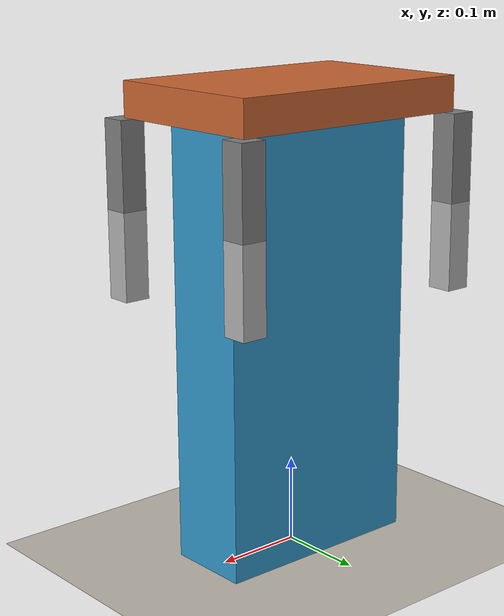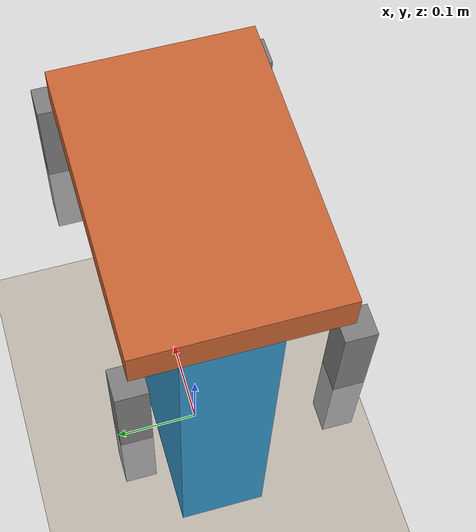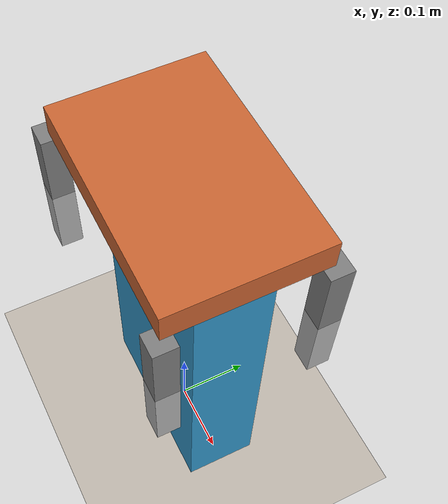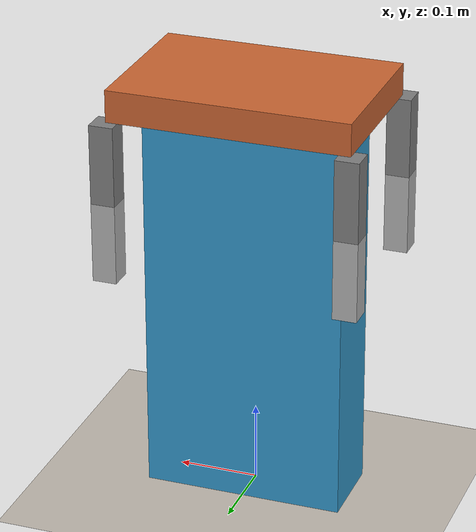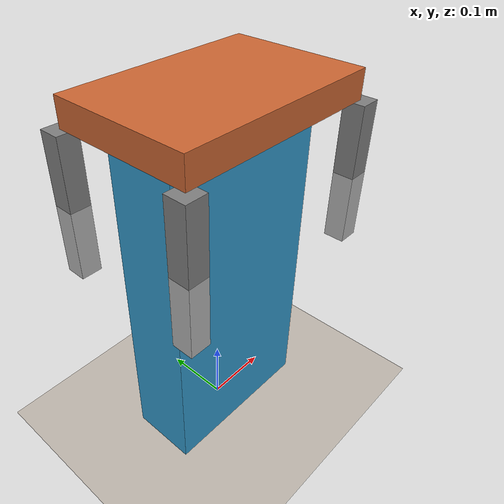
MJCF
<mujoco>
    <compiler angle="radian" meshdir="meshes" autolimits="true" />
    <option timestep="0.002" gravity="0 0 -9.81" integrator="implicitfast" density="1.225" viscosity="1.8e-5" />
    <asset>
        <!-- 天空盒纹理 -->
        <texture type="skybox" file="sea.png" gridsize="3 4" gridlayout=".U..LFRB.D.." />

        <!-- 地面纹理和材质 -->
        <texture name="floor_tex" type="2d" file="Concrete.png" width="512" height="512" hflip="false" vflip="false" content_type="image/png"/>
        <material name="floor_mat" reflectance="0.03" texture="floor_tex" texrepeat="20 20" texuniform="false" specular="0.1" shininess="0.2" rgba="1 1 1 1" />

        <!-- 竖直长方体材质 -->
        <material name="cube_mat" rgba="0.2 0.6 0.8 1" specular="0.2" shininess="0.3" />
        <!-- 平放长方体材质 -->
        <material name="flat_cube_mat" rgba="0.8 0.4 0.2 1" specular="0.2" shininess="0.3" />
        <!-- link小长方体材质（新增二级link用浅灰色区分）-->
        <material name="link_mat" rgba="0.5 0.5 0.5 1" specular="0.1" shininess="0.2" />
        <material name="link2_mat" rgba="0.7 0.7 0.7 1" specular="0.1" shininess="0.2" />
    </asset>

    <worldbody>
        <geom name="floor" pos="0 0 0" size="50 50 0.1" type="plane" material="floor_mat" condim="3" />

        <light directional="true" ambient=".3 .3 .3" pos="30 30 30" dir="0 -.5 -1"
            diffuse=".5 .5 .5" specular=".5 .5 .5" />

        <!-- 竖直长方体 25cm×10cm×50cm -->
        <body name="vertical_cube" pos="0 0 0.25">
            <geom name="cube_geom" type="box" size="0.125 0.05 0.25" material="cube_mat" mass="1.0" condim="3"/>
        </body>

        <!-- 平放长方体 30cm×20cm×4cm -->
        <body name="flat_cube" pos="0 0 0.52">
            <geom name="flat_cube_geom" type="box" size="0.15 0.1 0.02" material="flat_cube_mat" mass="0.2" condim="3"/>

            <!-- 第一级4个link：3cm×3cm×10cm，上表面贴平放长方体下表面 -->
            <body name="link1" pos="-0.15 -0.1 -0.07">
                <!-- 为link1添加hinge关节：补充range（-π到π）和limited=true -->
                <joint type="hinge" name="joint_link1" pos="0 0 0.05" axis="0 1 0"
                       damping="0.1" frictionloss="0.01" stiffness="0"
                       range="-3.1416 3.1416" limited="true" />
                <geom name="link1_geom" type="box" size="0.015 0.015 0.05" material="link_mat" mass="0.01" condim="3"/>

                <!-- 二级link1：接在link1底部 -->
                <body name="link1_2" pos="0 0 -0.1">
                    <!-- 补充关节range和limited -->
                    <joint type="hinge" name="joint_link1_2" pos="0 0 0.05" axis="0 1 0"
                           damping="0.1" frictionloss="0.01" stiffness="0"
                           range="-3.1416 3.1416" limited="true" />
                    <geom name="link1_2_geom" type="box" size="0.015 0.015 0.05" material="link2_mat" mass="0.01" condim="3"/>
                </body>
            </body>

            <body name="link2" pos="0.15 -0.1 -0.07">
                <!-- 补充关节range和limited -->
                <joint type="hinge" name="joint_link2" pos="0 0 0.05" axis="0 1 0"
                       damping="0.1" frictionloss="0.01" stiffness="0"
                       range="-3.1416 3.1416" limited="true" />
                <geom name="link2_geom" type="box" size="0.015 0.015 0.05" material="link_mat" mass="0.01" condim="3"/>

                <!-- 二级link2 -->
                <body name="link2_2" pos="0 0 -0.1">
                    <!-- 补充关节range和limited -->
                    <joint type="hinge" name="joint_link2_2" pos="0 0 0.05" axis="0 1 0"
                           damping="0.1" frictionloss="0.01" stiffness="0"
                           range="-3.1416 3.1416" limited="true" />
                    <geom name="link2_2_geom" type="box" size="0.015 0.015 0.05" material="link2_mat" mass="0.01" condim="3"/>
                </body>
            </body>

            <body name="link3" pos="-0.15 0.1 -0.07">
                <!-- 补充关节range和limited -->
                <joint type="hinge" name="joint_link3" pos="0 0 0.05" axis="0 1 0"
                       damping="0.1" frictionloss="0.01" stiffness="0"
                       range="-3.1416 3.1416" limited="true" />
                <geom name="link3_geom" type="box" size="0.015 0.015 0.05" material="link_mat" mass="0.01" condim="3"/>

                <!-- 二级link3 -->
                <body name="link3_2" pos="0 0 -0.1">
                    <!-- 补充关节range和limited -->
                    <joint type="hinge" name="joint_link3_2" pos="0 0 0.05" axis="0 1 0"
                           damping="0.1" frictionloss="0.01" stiffness="0"
                           range="-3.1416 3.1416" limited="true" />
                    <geom name="link3_2_geom" type="box" size="0.015 0.015 0.05" material="link2_mat" mass="0.01" condim="3"/>
                </body>
            </body>

            <body name="link4" pos="0.15 0.1 -0.07">
                <!-- 补充关节range和limited -->
                <joint type="hinge" name="joint_link4" pos="0 0 0.05" axis="0 1 0"
                       damping="0.1" frictionloss="0.01" stiffness="0"
                       range="-3.1416 3.1416" limited="true" />
                <geom name="link4_geom" type="box" size="0.015 0.015 0.05" material="link_mat" mass="0.01" condim="3"/>

                <!-- 二级link4 -->
                <body name="link4_2" pos="0 0 -0.1">
                    <!-- 补充关节range和limited -->
                    <joint type="hinge" name="joint_link4_2" pos="0 0 0.05" axis="0 1 0"
                           damping="0.1" frictionloss="0.01" stiffness="0"
                           range="-3.1416 3.1416" limited="true" />
                    <geom name="link4_2_geom" type="box" size="0.015 0.015 0.05" material="link2_mat" mass="0.01" condim="3"/>
                </body>
            </body>
        </body>
    </worldbody>

    <!-- 角度（位置）控制执行器：inheritrange now works -->
    <actuator>
        <position name="pos_link1" joint="joint_link1" kp="100" dampratio="1" inheritrange="1.0"/>
        <position name="pos_link1_2" joint="joint_link1_2" kp="100" dampratio="1" inheritrange="1.0"/>
        <position name="pos_link2" joint="joint_link2" kp="100" dampratio="1" inheritrange="1.0"/>
        <position name="pos_link2_2" joint="joint_link2_2" kp="100" dampratio="1" inheritrange="1.0"/>
        <position name="pos_link3" joint="joint_link3" kp="100" dampratio="1" inheritrange="1.0"/>
        <position name="pos_link3_2" joint="joint_link3_2" kp="100" dampratio="1" inheritrange="1.0"/>
        <position name="pos_link4" joint="joint_link4" kp="100" dampratio="1" inheritrange="1.0"/>
        <position name="pos_link4_2" joint="joint_link4_2" kp="100" dampratio="1" inheritrange="1.0"/>
    </actuator>
</mujoco>
